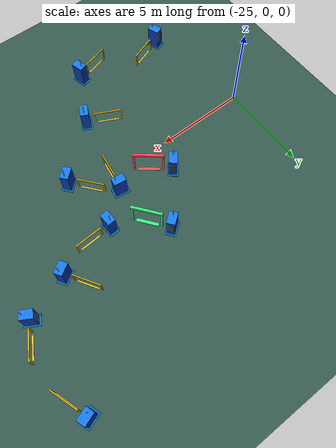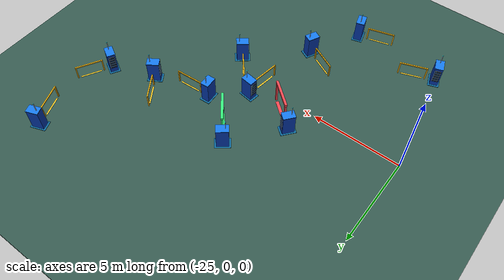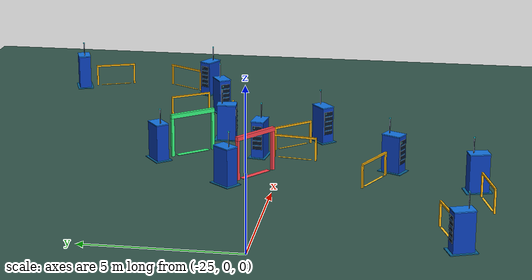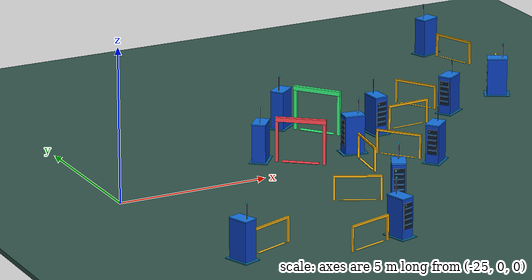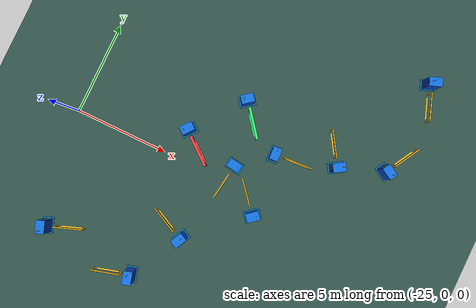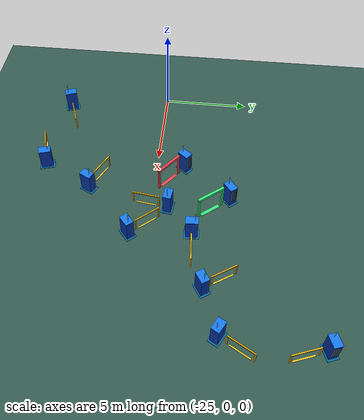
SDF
<sdf version="1.9">
 <world name="monaco">
  <model name="ground">
   <static>true</static>
   <link name="body">
    <visual name="ground">
     <pose>0 0 -0.08 0 0 0</pose>
     <geometry><box><size>100 100 0.15</size></box></geometry>
     <material><ambient>0.20 0.34 0.30 1</ambient><diffuse>0.20 0.34 0.30 1</diffuse></material>
    </visual>
    <collision name="ground_collision">
     <pose>0 0 -0.08 0 0 0</pose>
     <geometry><box><size>100 100 0.15</size></box></geometry>
    </collision>
   </link>
  </model>
  <model name="checkpoint_01">
   <static>true</static>
   <pose>-8.518051566739086 7.970329008862338 0 0 0 0.3514447940035536</pose>
   <link name="body">
    <visual name="stripe">
     <pose>0 0 0.016 0 0 0</pose>
     <geometry><box><size>0.08 1.17 0.008</size></box></geometry>
     <material><ambient>1 0.78 0.15 1</ambient><diffuse>1 0.78 0.15 1</diffuse></material>
    </visual>
    <visual name="post_-1">
     <pose>0 -0.73 0.38 0 0 0</pose>
     <geometry><box><size>0.06 0.06 0.76</size></box></geometry>
     <material><ambient>1 0.72 0.06 1</ambient><diffuse>1 0.72 0.06 1</diffuse></material>
    </visual>
    <visual name="post_1">
     <pose>0 0.73 0.38 0 0 0</pose>
     <geometry><box><size>0.06 0.06 0.76</size></box></geometry>
     <material><ambient>1 0.72 0.06 1</ambient><diffuse>1 0.72 0.06 1</diffuse></material>
    </visual>
    <visual name="overhead">
     <pose>0 0 0.79 0 0 0</pose>
     <geometry><box><size>0.06 1.52 0.06</size></box></geometry>
     <material><ambient>1 0.72 0.06 1</ambient><diffuse>1 0.72 0.06 1</diffuse></material>
    </visual>
   </link>
  </model>
  <model name="checkpoint_12">
   <static>true</static>
   <pose>-8.51454364613579 5.078725168060238 0 0 0 2.6257617773482065</pose>
   <link name="body">
    <visual name="stripe">
     <pose>0 0 0.016 0 0 0</pose>
     <geometry><box><size>0.08 1.17 0.008</size></box></geometry>
     <material><ambient>1 0.78 0.15 1</ambient><diffuse>1 0.78 0.15 1</diffuse></material>
    </visual>
    <visual name="post_-1">
     <pose>0 -0.73 0.38 0 0 0</pose>
     <geometry><box><size>0.06 0.06 0.76</size></box></geometry>
     <material><ambient>1 0.72 0.06 1</ambient><diffuse>1 0.72 0.06 1</diffuse></material>
    </visual>
    <visual name="post_1">
     <pose>0 0.73 0.38 0 0 0</pose>
     <geometry><box><size>0.06 0.06 0.76</size></box></geometry>
     <material><ambient>1 0.72 0.06 1</ambient><diffuse>1 0.72 0.06 1</diffuse></material>
    </visual>
    <visual name="overhead">
     <pose>0 0 0.79 0 0 0</pose>
     <geometry><box><size>0.06 1.52 0.06</size></box></geometry>
     <material><ambient>1 0.72 0.06 1</ambient><diffuse>1 0.72 0.06 1</diffuse></material>
    </visual>
   </link>
  </model>
  <model name="checkpoint_13">
   <static>true</static>
   <pose>-12.197067639076046 4.162002339004416 0 0 0 -2.5752049661076515</pose>
   <link name="body">
    <visual name="stripe">
     <pose>0 0 0.016 0 0 0</pose>
     <geometry><box><size>0.08 1.17 0.008</size></box></geometry>
     <material><ambient>1 0.78 0.15 1</ambient><diffuse>1 0.78 0.15 1</diffuse></material>
    </visual>
    <visual name="post_-1">
     <pose>0 -0.73 0.38 0 0 0</pose>
     <geometry><box><size>0.06 0.06 0.76</size></box></geometry>
     <material><ambient>1 0.72 0.06 1</ambient><diffuse>1 0.72 0.06 1</diffuse></material>
    </visual>
    <visual name="post_1">
     <pose>0 0.73 0.38 0 0 0</pose>
     <geometry><box><size>0.06 0.06 0.76</size></box></geometry>
     <material><ambient>1 0.72 0.06 1</ambient><diffuse>1 0.72 0.06 1</diffuse></material>
    </visual>
    <visual name="overhead">
     <pose>0 0 0.79 0 0 0</pose>
     <geometry><box><size>0.06 1.52 0.06</size></box></geometry>
     <material><ambient>1 0.72 0.06 1</ambient><diffuse>1 0.72 0.06 1</diffuse></material>
    </visual>
   </link>
  </model>
  <model name="checkpoint_14">
   <static>true</static>
   <pose>-13.475272569901112 2.419633688318865 0 0 0 -1.512040504079227</pose>
   <link name="body">
    <visual name="stripe">
     <pose>0 0 0.016 0 0 0</pose>
     <geometry><box><size>0.08 1.17 0.008</size></box></geometry>
     <material><ambient>1 0.78 0.15 1</ambient><diffuse>1 0.78 0.15 1</diffuse></material>
    </visual>
    <visual name="post_-1">
     <pose>0 -0.73 0.38 0 0 0</pose>
     <geometry><box><size>0.06 0.06 0.76</size></box></geometry>
     <material><ambient>1 0.72 0.06 1</ambient><diffuse>1 0.72 0.06 1</diffuse></material>
    </visual>
    <visual name="post_1">
     <pose>0 0.73 0.38 0 0 0</pose>
     <geometry><box><size>0.06 0.06 0.76</size></box></geometry>
     <material><ambient>1 0.72 0.06 1</ambient><diffuse>1 0.72 0.06 1</diffuse></material>
    </visual>
    <visual name="overhead">
     <pose>0 0 0.79 0 0 0</pose>
     <geometry><box><size>0.06 1.52 0.06</size></box></geometry>
     <material><ambient>1 0.72 0.06 1</ambient><diffuse>1 0.72 0.06 1</diffuse></material>
    </visual>
   </link>
  </model>
  <model name="checkpoint_15">
   <static>true</static>
   <pose>-15.224167509325685 -0.07355108800284103 0 0 0 -2.4410563523239475</pose>
   <link name="body">
    <visual name="stripe">
     <pose>0 0 0.016 0 0 0</pose>
     <geometry><box><size>0.08 1.17 0.008</size></box></geometry>
     <material><ambient>1 0.78 0.15 1</ambient><diffuse>1 0.78 0.15 1</diffuse></material>
    </visual>
    <visual name="post_-1">
     <pose>0 -0.73 0.38 0 0 0</pose>
     <geometry><box><size>0.06 0.06 0.76</size></box></geometry>
     <material><ambient>1 0.72 0.06 1</ambient><diffuse>1 0.72 0.06 1</diffuse></material>
    </visual>
    <visual name="post_1">
     <pose>0 0.73 0.38 0 0 0</pose>
     <geometry><box><size>0.06 0.06 0.76</size></box></geometry>
     <material><ambient>1 0.72 0.06 1</ambient><diffuse>1 0.72 0.06 1</diffuse></material>
    </visual>
    <visual name="overhead">
     <pose>0 0 0.79 0 0 0</pose>
     <geometry><box><size>0.06 1.52 0.06</size></box></geometry>
     <material><ambient>1 0.72 0.06 1</ambient><diffuse>1 0.72 0.06 1</diffuse></material>
    </visual>
   </link>
  </model>
  <model name="checkpoint_16">
   <static>true</static>
   <pose>-16.531889019514423 -0.31589909540593986 0 0 0 3.001413810353181</pose>
   <link name="body">
    <visual name="stripe">
     <pose>0 0 0.016 0 0 0</pose>
     <geometry><box><size>0.08 1.17 0.008</size></box></geometry>
     <material><ambient>1 0.78 0.15 1</ambient><diffuse>1 0.78 0.15 1</diffuse></material>
    </visual>
    <visual name="post_-1">
     <pose>0 -0.73 0.38 0 0 0</pose>
     <geometry><box><size>0.06 0.06 0.76</size></box></geometry>
     <material><ambient>1 0.72 0.06 1</ambient><diffuse>1 0.72 0.06 1</diffuse></material>
    </visual>
    <visual name="post_1">
     <pose>0 0.73 0.38 0 0 0</pose>
     <geometry><box><size>0.06 0.06 0.76</size></box></geometry>
     <material><ambient>1 0.72 0.06 1</ambient><diffuse>1 0.72 0.06 1</diffuse></material>
    </visual>
    <visual name="overhead">
     <pose>0 0 0.79 0 0 0</pose>
     <geometry><box><size>0.06 1.52 0.06</size></box></geometry>
     <material><ambient>1 0.72 0.06 1</ambient><diffuse>1 0.72 0.06 1</diffuse></material>
    </visual>
   </link>
  </model>
  <model name="checkpoint_17">
   <static>true</static>
   <pose>-18.396703856530358 -3.143370510452181 0 0 0 -2.0308338431756914</pose>
   <link name="body">
    <visual name="stripe">
     <pose>0 0 0.016 0 0 0</pose>
     <geometry><box><size>0.08 1.17 0.008</size></box></geometry>
     <material><ambient>1 0.78 0.15 1</ambient><diffuse>1 0.78 0.15 1</diffuse></material>
    </visual>
    <visual name="post_-1">
     <pose>0 -0.73 0.38 0 0 0</pose>
     <geometry><box><size>0.06 0.06 0.76</size></box></geometry>
     <material><ambient>1 0.72 0.06 1</ambient><diffuse>1 0.72 0.06 1</diffuse></material>
    </visual>
    <visual name="post_1">
     <pose>0 0.73 0.38 0 0 0</pose>
     <geometry><box><size>0.06 0.06 0.76</size></box></geometry>
     <material><ambient>1 0.72 0.06 1</ambient><diffuse>1 0.72 0.06 1</diffuse></material>
    </visual>
    <visual name="overhead">
     <pose>0 0 0.79 0 0 0</pose>
     <geometry><box><size>0.06 1.52 0.06</size></box></geometry>
     <material><ambient>1 0.72 0.06 1</ambient><diffuse>1 0.72 0.06 1</diffuse></material>
    </visual>
   </link>
  </model>
  <model name="checkpoint_18">
   <static>true</static>
   <pose>-19.991098207878863 -6.813204397872482 0 0 0 -1.2976837276046616</pose>
   <link name="body">
    <visual name="stripe">
     <pose>0 0 0.016 0 0 0</pose>
     <geometry><box><size>0.08 1.17 0.008</size></box></geometry>
     <material><ambient>1 0.78 0.15 1</ambient><diffuse>1 0.78 0.15 1</diffuse></material>
    </visual>
    <visual name="post_-1">
     <pose>0 -0.73 0.38 0 0 0</pose>
     <geometry><box><size>0.06 0.06 0.76</size></box></geometry>
     <material><ambient>1 0.72 0.06 1</ambient><diffuse>1 0.72 0.06 1</diffuse></material>
    </visual>
    <visual name="post_1">
     <pose>0 0.73 0.38 0 0 0</pose>
     <geometry><box><size>0.06 0.06 0.76</size></box></geometry>
     <material><ambient>1 0.72 0.06 1</ambient><diffuse>1 0.72 0.06 1</diffuse></material>
    </visual>
    <visual name="overhead">
     <pose>0 0 0.79 0 0 0</pose>
     <geometry><box><size>0.06 1.52 0.06</size></box></geometry>
     <material><ambient>1 0.72 0.06 1</ambient><diffuse>1 0.72 0.06 1</diffuse></material>
    </visual>
   </link>
  </model>
  <model name="checkpoint_19">
   <static>true</static>
   <pose>-22.6726604712124 -5.637929358284618 0 0 0 1.9169985286896902</pose>
   <link name="body">
    <visual name="stripe">
     <pose>0 0 0.016 0 0 0</pose>
     <geometry><box><size>0.08 1.17 0.008</size></box></geometry>
     <material><ambient>1 0.78 0.15 1</ambient><diffuse>1 0.78 0.15 1</diffuse></material>
    </visual>
    <visual name="post_-1">
     <pose>0 -0.73 0.38 0 0 0</pose>
     <geometry><box><size>0.06 0.06 0.76</size></box></geometry>
     <material><ambient>1 0.72 0.06 1</ambient><diffuse>1 0.72 0.06 1</diffuse></material>
    </visual>
    <visual name="post_1">
     <pose>0 0.73 0.38 0 0 0</pose>
     <geometry><box><size>0.06 0.06 0.76</size></box></geometry>
     <material><ambient>1 0.72 0.06 1</ambient><diffuse>1 0.72 0.06 1</diffuse></material>
    </visual>
    <visual name="overhead">
     <pose>0 0 0.79 0 0 0</pose>
     <geometry><box><size>0.06 1.52 0.06</size></box></geometry>
     <material><ambient>1 0.72 0.06 1</ambient><diffuse>1 0.72 0.06 1</diffuse></material>
    </visual>
   </link>
  </model>
  <model name="start">
   <static>true</static>
   <pose>-16.410725416388626 3.250943611330176 0 0 0 0.667306134978364</pose>
   <link name="body">
    <visual name="stripe">
     <pose>0 0 0.018 0 0 0</pose>
     <geometry><box><size>0.18 1.2 0.012</size></box></geometry>
     <material><ambient>0.2 0.95 0.48 1</ambient><diffuse>0.2 0.95 0.48 1</diffuse></material>
    </visual>
    <visual name="post_-1">
     <pose>0 -0.77 0.7 0 0 0</pose>
     <geometry><box><size>0.1 0.1 1.4</size></box></geometry>
     <material><ambient>0.2 0.95 0.48 1</ambient><diffuse>0.2 0.95 0.48 1</diffuse></material>
    </visual>
    <visual name="post_1">
     <pose>0 0.77 0.7 0 0 0</pose>
     <geometry><box><size>0.1 0.1 1.4</size></box></geometry>
     <material><ambient>0.2 0.95 0.48 1</ambient><diffuse>0.2 0.95 0.48 1</diffuse></material>
    </visual>
    <visual name="header">
     <pose>0 0 1.42 0 0 0</pose>
     <geometry><box><size>0.13 1.65 0.14</size></box></geometry>
     <material><ambient>0.2 0.95 0.48 1</ambient><diffuse>0.2 0.95 0.48 1</diffuse></material>
    </visual>
   </link>
  </model>
  <model name="finish">
   <static>true</static>
   <pose>-18.32026696856702 0.7777647055836955 0 0 0 0.8913825213871167</pose>
   <link name="body">
    <visual name="stripe">
     <pose>0 0 0.018 0 0 0</pose>
     <geometry><box><size>0.18 1.2 0.012</size></box></geometry>
     <material><ambient>1 0.27 0.31 1</ambient><diffuse>1 0.27 0.31 1</diffuse></material>
    </visual>
    <visual name="post_-1">
     <pose>0 -0.77 0.7 0 0 0</pose>
     <geometry><box><size>0.1 0.1 1.4</size></box></geometry>
     <material><ambient>1 0.27 0.31 1</ambient><diffuse>1 0.27 0.31 1</diffuse></material>
    </visual>
    <visual name="post_1">
     <pose>0 0.77 0.7 0 0 0</pose>
     <geometry><box><size>0.1 0.1 1.4</size></box></geometry>
     <material><ambient>1 0.27 0.31 1</ambient><diffuse>1 0.27 0.31 1</diffuse></material>
    </visual>
    <visual name="header">
     <pose>0 0 1.42 0 0 0</pose>
     <geometry><box><size>0.13 1.65 0.14</size></box></geometry>
     <material><ambient>1 0.27 0.31 1</ambient><diffuse>1 0.27 0.31 1</diffuse></material>
    </visual>
   </link>
  </model>
  <model name="edge_01">
   <static>true</static>
   <pose>-8.948369878187117 9.143924403720598 0 0 0 0.3514447940035536</pose>
   <link name="body">
    <collision name="chassis_collision">
     <pose>0 0 0.14 0 0 0</pose>
     <geometry><box><size>0.64 0.32 0.13</size></box></geometry>
    </collision>
    <visual name="parking_bay">
     <pose>0 0 0.012 0 0 0</pose>
     <geometry><box><size>0.86 0.60 0.025</size></box></geometry>
     <material><ambient>0.04 0.40 0.60 1</ambient><diffuse>0.04 0.40 0.60 1</diffuse></material>
    </visual>
    <visual name="server_cabinet">
     <pose>0 0 0.65 0 0 0</pose>
     <geometry><box><size>0.66 0.44 1.25</size></box></geometry>
     <material><ambient>0.035 0.24 0.72 1</ambient><diffuse>0.035 0.24 0.72 1</diffuse></material>
    </visual>
    <visual name="cabinet_top">
     <pose>0 0 1.285 0 0 0</pose>
     <geometry><box><size>0.68 0.46 0.035</size></box></geometry>
     <material><ambient>0.08 0.46 0.90 1</ambient><diffuse>0.08 0.46 0.90 1</diffuse></material>
    </visual>
    <visual name="front_panel">
     <pose>0.337 0 0.73 0 0 0</pose>
     <geometry><box><size>0.014 0.34 0.82</size></box></geometry>
     <material><ambient>0.025 0.075 0.14 1</ambient><diffuse>0.025 0.075 0.14 1</diffuse></material>
    </visual>
    <visual name="rack_slot_0">
     <pose>0.347 0 0.47 0 0 0</pose>
     <geometry><box><size>0.012 0.29 0.045</size></box></geometry>
     <material><ambient>0.11 0.38 0.62 1</ambient><diffuse>0.11 0.38 0.62 1</diffuse></material>
    </visual>
    <visual name="rack_slot_1">
     <pose>0.347 0 0.64 0 0 0</pose>
     <geometry><box><size>0.012 0.29 0.045</size></box></geometry>
     <material><ambient>0.11 0.38 0.62 1</ambient><diffuse>0.11 0.38 0.62 1</diffuse></material>
    </visual>
    <visual name="rack_slot_2">
     <pose>0.347 0 0.81 0 0 0</pose>
     <geometry><box><size>0.012 0.29 0.045</size></box></geometry>
     <material><ambient>0.11 0.38 0.62 1</ambient><diffuse>0.11 0.38 0.62 1</diffuse></material>
    </visual>
    <visual name="rack_slot_3">
     <pose>0.347 0 0.98 0 0 0</pose>
     <geometry><box><size>0.012 0.29 0.045</size></box></geometry>
     <material><ambient>0.11 0.38 0.62 1</ambient><diffuse>0.11 0.38 0.62 1</diffuse></material>
    </visual>
    <visual name="status_light">
     <pose>0.347 -0.10 1.08 0 0 0</pose>
     <geometry><box><size>0.015 0.035 0.035</size></box></geometry>
     <material><ambient>0.10 0.95 0.80 1</ambient><diffuse>0.10 0.95 0.80 1</diffuse></material>
    </visual>
    <visual name="antenna">
     <pose>-0.17 0 1.55 0 0 0</pose>
     <geometry><cylinder><radius>0.018</radius><length>0.5</length></cylinder></geometry>
     <material><ambient>0.05 0.10 0.17 1</ambient><diffuse>0.05 0.10 0.17 1</diffuse></material>
    </visual>
    <visual name="antenna_tip">
     <pose>-0.17 0 1.81 0 0 0</pose>
     <geometry><cylinder><radius>0.027</radius><length>0.035</length></cylinder></geometry>
     <material><ambient>0.12 0.90 0.96 1</ambient><diffuse>0.12 0.90 0.96 1</diffuse></material>
    </visual>
   </link>
  </model>
  <model name="edge_12">
   <static>true</static>
   <pose>-9.131115876744632 3.9913711850160603 0 0 0 2.6257617773482065</pose>
   <link name="body">
    <collision name="chassis_collision">
     <pose>0 0 0.14 0 0 0</pose>
     <geometry><box><size>0.64 0.32 0.13</size></box></geometry>
    </collision>
    <visual name="parking_bay">
     <pose>0 0 0.012 0 0 0</pose>
     <geometry><box><size>0.86 0.60 0.025</size></box></geometry>
     <material><ambient>0.04 0.40 0.60 1</ambient><diffuse>0.04 0.40 0.60 1</diffuse></material>
    </visual>
    <visual name="server_cabinet">
     <pose>0 0 0.65 0 0 0</pose>
     <geometry><box><size>0.66 0.44 1.25</size></box></geometry>
     <material><ambient>0.035 0.24 0.72 1</ambient><diffuse>0.035 0.24 0.72 1</diffuse></material>
    </visual>
    <visual name="cabinet_top">
     <pose>0 0 1.285 0 0 0</pose>
     <geometry><box><size>0.68 0.46 0.035</size></box></geometry>
     <material><ambient>0.08 0.46 0.90 1</ambient><diffuse>0.08 0.46 0.90 1</diffuse></material>
    </visual>
    <visual name="front_panel">
     <pose>0.337 0 0.73 0 0 0</pose>
     <geometry><box><size>0.014 0.34 0.82</size></box></geometry>
     <material><ambient>0.025 0.075 0.14 1</ambient><diffuse>0.025 0.075 0.14 1</diffuse></material>
    </visual>
    <visual name="rack_slot_0">
     <pose>0.347 0 0.47 0 0 0</pose>
     <geometry><box><size>0.012 0.29 0.045</size></box></geometry>
     <material><ambient>0.11 0.38 0.62 1</ambient><diffuse>0.11 0.38 0.62 1</diffuse></material>
    </visual>
    <visual name="rack_slot_1">
     <pose>0.347 0 0.64 0 0 0</pose>
     <geometry><box><size>0.012 0.29 0.045</size></box></geometry>
     <material><ambient>0.11 0.38 0.62 1</ambient><diffuse>0.11 0.38 0.62 1</diffuse></material>
    </visual>
    <visual name="rack_slot_2">
     <pose>0.347 0 0.81 0 0 0</pose>
     <geometry><box><size>0.012 0.29 0.045</size></box></geometry>
     <material><ambient>0.11 0.38 0.62 1</ambient><diffuse>0.11 0.38 0.62 1</diffuse></material>
    </visual>
    <visual name="rack_slot_3">
     <pose>0.347 0 0.98 0 0 0</pose>
     <geometry><box><size>0.012 0.29 0.045</size></box></geometry>
     <material><ambient>0.11 0.38 0.62 1</ambient><diffuse>0.11 0.38 0.62 1</diffuse></material>
    </visual>
    <visual name="status_light">
     <pose>0.347 -0.10 1.08 0 0 0</pose>
     <geometry><box><size>0.015 0.035 0.035</size></box></geometry>
     <material><ambient>0.10 0.95 0.80 1</ambient><diffuse>0.10 0.95 0.80 1</diffuse></material>
    </visual>
    <visual name="antenna">
     <pose>-0.17 0 1.55 0 0 0</pose>
     <geometry><cylinder><radius>0.018</radius><length>0.5</length></cylinder></geometry>
     <material><ambient>0.05 0.10 0.17 1</ambient><diffuse>0.05 0.10 0.17 1</diffuse></material>
    </visual>
    <visual name="antenna_tip">
     <pose>-0.17 0 1.81 0 0 0</pose>
     <geometry><cylinder><radius>0.027</radius><length>0.035</length></cylinder></geometry>
     <material><ambient>0.12 0.90 0.96 1</ambient><diffuse>0.12 0.90 0.96 1</diffuse></material>
    </visual>
   </link>
  </model>
  <model name="edge_13">
   <static>true</static>
   <pose>-11.526333482645251 3.1071963419617985 0 0 0 -2.5752049661076515</pose>
   <link name="body">
    <collision name="chassis_collision">
     <pose>0 0 0.14 0 0 0</pose>
     <geometry><box><size>0.64 0.32 0.13</size></box></geometry>
    </collision>
    <visual name="parking_bay">
     <pose>0 0 0.012 0 0 0</pose>
     <geometry><box><size>0.86 0.60 0.025</size></box></geometry>
     <material><ambient>0.04 0.40 0.60 1</ambient><diffuse>0.04 0.40 0.60 1</diffuse></material>
    </visual>
    <visual name="server_cabinet">
     <pose>0 0 0.65 0 0 0</pose>
     <geometry><box><size>0.66 0.44 1.25</size></box></geometry>
     <material><ambient>0.035 0.24 0.72 1</ambient><diffuse>0.035 0.24 0.72 1</diffuse></material>
    </visual>
    <visual name="cabinet_top">
     <pose>0 0 1.285 0 0 0</pose>
     <geometry><box><size>0.68 0.46 0.035</size></box></geometry>
     <material><ambient>0.08 0.46 0.90 1</ambient><diffuse>0.08 0.46 0.90 1</diffuse></material>
    </visual>
    <visual name="front_panel">
     <pose>0.337 0 0.73 0 0 0</pose>
     <geometry><box><size>0.014 0.34 0.82</size></box></geometry>
     <material><ambient>0.025 0.075 0.14 1</ambient><diffuse>0.025 0.075 0.14 1</diffuse></material>
    </visual>
    <visual name="rack_slot_0">
     <pose>0.347 0 0.47 0 0 0</pose>
     <geometry><box><size>0.012 0.29 0.045</size></box></geometry>
     <material><ambient>0.11 0.38 0.62 1</ambient><diffuse>0.11 0.38 0.62 1</diffuse></material>
    </visual>
    <visual name="rack_slot_1">
     <pose>0.347 0 0.64 0 0 0</pose>
     <geometry><box><size>0.012 0.29 0.045</size></box></geometry>
     <material><ambient>0.11 0.38 0.62 1</ambient><diffuse>0.11 0.38 0.62 1</diffuse></material>
    </visual>
    <visual name="rack_slot_2">
     <pose>0.347 0 0.81 0 0 0</pose>
     <geometry><box><size>0.012 0.29 0.045</size></box></geometry>
     <material><ambient>0.11 0.38 0.62 1</ambient><diffuse>0.11 0.38 0.62 1</diffuse></material>
    </visual>
    <visual name="rack_slot_3">
     <pose>0.347 0 0.98 0 0 0</pose>
     <geometry><box><size>0.012 0.29 0.045</size></box></geometry>
     <material><ambient>0.11 0.38 0.62 1</ambient><diffuse>0.11 0.38 0.62 1</diffuse></material>
    </visual>
    <visual name="status_light">
     <pose>0.347 -0.10 1.08 0 0 0</pose>
     <geometry><box><size>0.015 0.035 0.035</size></box></geometry>
     <material><ambient>0.10 0.95 0.80 1</ambient><diffuse>0.10 0.95 0.80 1</diffuse></material>
    </visual>
    <visual name="antenna">
     <pose>-0.17 0 1.55 0 0 0</pose>
     <geometry><cylinder><radius>0.018</radius><length>0.5</length></cylinder></geometry>
     <material><ambient>0.05 0.10 0.17 1</ambient><diffuse>0.05 0.10 0.17 1</diffuse></material>
    </visual>
    <visual name="antenna_tip">
     <pose>-0.17 0 1.81 0 0 0</pose>
     <geometry><cylinder><radius>0.027</radius><length>0.035</length></cylinder></geometry>
     <material><ambient>0.12 0.90 0.96 1</ambient><diffuse>0.12 0.90 0.96 1</diffuse></material>
    </visual>
   </link>
  </model>
  <model name="edge_14">
   <static>true</static>
   <pose>-14.72311553636986 2.3462311608795936 0 0 0 -1.512040504079227</pose>
   <link name="body">
    <collision name="chassis_collision">
     <pose>0 0 0.14 0 0 0</pose>
     <geometry><box><size>0.64 0.32 0.13</size></box></geometry>
    </collision>
    <visual name="parking_bay">
     <pose>0 0 0.012 0 0 0</pose>
     <geometry><box><size>0.86 0.60 0.025</size></box></geometry>
     <material><ambient>0.04 0.40 0.60 1</ambient><diffuse>0.04 0.40 0.60 1</diffuse></material>
    </visual>
    <visual name="server_cabinet">
     <pose>0 0 0.65 0 0 0</pose>
     <geometry><box><size>0.66 0.44 1.25</size></box></geometry>
     <material><ambient>0.035 0.24 0.72 1</ambient><diffuse>0.035 0.24 0.72 1</diffuse></material>
    </visual>
    <visual name="cabinet_top">
     <pose>0 0 1.285 0 0 0</pose>
     <geometry><box><size>0.68 0.46 0.035</size></box></geometry>
     <material><ambient>0.08 0.46 0.90 1</ambient><diffuse>0.08 0.46 0.90 1</diffuse></material>
    </visual>
    <visual name="front_panel">
     <pose>0.337 0 0.73 0 0 0</pose>
     <geometry><box><size>0.014 0.34 0.82</size></box></geometry>
     <material><ambient>0.025 0.075 0.14 1</ambient><diffuse>0.025 0.075 0.14 1</diffuse></material>
    </visual>
    <visual name="rack_slot_0">
     <pose>0.347 0 0.47 0 0 0</pose>
     <geometry><box><size>0.012 0.29 0.045</size></box></geometry>
     <material><ambient>0.11 0.38 0.62 1</ambient><diffuse>0.11 0.38 0.62 1</diffuse></material>
    </visual>
    <visual name="rack_slot_1">
     <pose>0.347 0 0.64 0 0 0</pose>
     <geometry><box><size>0.012 0.29 0.045</size></box></geometry>
     <material><ambient>0.11 0.38 0.62 1</ambient><diffuse>0.11 0.38 0.62 1</diffuse></material>
    </visual>
    <visual name="rack_slot_2">
     <pose>0.347 0 0.81 0 0 0</pose>
     <geometry><box><size>0.012 0.29 0.045</size></box></geometry>
     <material><ambient>0.11 0.38 0.62 1</ambient><diffuse>0.11 0.38 0.62 1</diffuse></material>
    </visual>
    <visual name="rack_slot_3">
     <pose>0.347 0 0.98 0 0 0</pose>
     <geometry><box><size>0.012 0.29 0.045</size></box></geometry>
     <material><ambient>0.11 0.38 0.62 1</ambient><diffuse>0.11 0.38 0.62 1</diffuse></material>
    </visual>
    <visual name="status_light">
     <pose>0.347 -0.10 1.08 0 0 0</pose>
     <geometry><box><size>0.015 0.035 0.035</size></box></geometry>
     <material><ambient>0.10 0.95 0.80 1</ambient><diffuse>0.10 0.95 0.80 1</diffuse></material>
    </visual>
    <visual name="antenna">
     <pose>-0.17 0 1.55 0 0 0</pose>
     <geometry><cylinder><radius>0.018</radius><length>0.5</length></cylinder></geometry>
     <material><ambient>0.05 0.10 0.17 1</ambient><diffuse>0.05 0.10 0.17 1</diffuse></material>
    </visual>
    <visual name="antenna_tip">
     <pose>-0.17 0 1.81 0 0 0</pose>
     <geometry><cylinder><radius>0.027</radius><length>0.035</length></cylinder></geometry>
     <material><ambient>0.12 0.90 0.96 1</ambient><diffuse>0.12 0.90 0.96 1</diffuse></material>
    </visual>
   </link>
  </model>
  <model name="edge_15">
   <static>true</static>
   <pose>-14.41838278381743 -1.0291718161882364 0 0 0 -2.4410563523239475</pose>
   <link name="body">
    <collision name="chassis_collision">
     <pose>0 0 0.14 0 0 0</pose>
     <geometry><box><size>0.64 0.32 0.13</size></box></geometry>
    </collision>
    <visual name="parking_bay">
     <pose>0 0 0.012 0 0 0</pose>
     <geometry><box><size>0.86 0.60 0.025</size></box></geometry>
     <material><ambient>0.04 0.40 0.60 1</ambient><diffuse>0.04 0.40 0.60 1</diffuse></material>
    </visual>
    <visual name="server_cabinet">
     <pose>0 0 0.65 0 0 0</pose>
     <geometry><box><size>0.66 0.44 1.25</size></box></geometry>
     <material><ambient>0.035 0.24 0.72 1</ambient><diffuse>0.035 0.24 0.72 1</diffuse></material>
    </visual>
    <visual name="cabinet_top">
     <pose>0 0 1.285 0 0 0</pose>
     <geometry><box><size>0.68 0.46 0.035</size></box></geometry>
     <material><ambient>0.08 0.46 0.90 1</ambient><diffuse>0.08 0.46 0.90 1</diffuse></material>
    </visual>
    <visual name="front_panel">
     <pose>0.337 0 0.73 0 0 0</pose>
     <geometry><box><size>0.014 0.34 0.82</size></box></geometry>
     <material><ambient>0.025 0.075 0.14 1</ambient><diffuse>0.025 0.075 0.14 1</diffuse></material>
    </visual>
    <visual name="rack_slot_0">
     <pose>0.347 0 0.47 0 0 0</pose>
     <geometry><box><size>0.012 0.29 0.045</size></box></geometry>
     <material><ambient>0.11 0.38 0.62 1</ambient><diffuse>0.11 0.38 0.62 1</diffuse></material>
    </visual>
    <visual name="rack_slot_1">
     <pose>0.347 0 0.64 0 0 0</pose>
     <geometry><box><size>0.012 0.29 0.045</size></box></geometry>
     <material><ambient>0.11 0.38 0.62 1</ambient><diffuse>0.11 0.38 0.62 1</diffuse></material>
    </visual>
    <visual name="rack_slot_2">
     <pose>0.347 0 0.81 0 0 0</pose>
     <geometry><box><size>0.012 0.29 0.045</size></box></geometry>
     <material><ambient>0.11 0.38 0.62 1</ambient><diffuse>0.11 0.38 0.62 1</diffuse></material>
    </visual>
    <visual name="rack_slot_3">
     <pose>0.347 0 0.98 0 0 0</pose>
     <geometry><box><size>0.012 0.29 0.045</size></box></geometry>
     <material><ambient>0.11 0.38 0.62 1</ambient><diffuse>0.11 0.38 0.62 1</diffuse></material>
    </visual>
    <visual name="status_light">
     <pose>0.347 -0.10 1.08 0 0 0</pose>
     <geometry><box><size>0.015 0.035 0.035</size></box></geometry>
     <material><ambient>0.10 0.95 0.80 1</ambient><diffuse>0.10 0.95 0.80 1</diffuse></material>
    </visual>
    <visual name="antenna">
     <pose>-0.17 0 1.55 0 0 0</pose>
     <geometry><cylinder><radius>0.018</radius><length>0.5</length></cylinder></geometry>
     <material><ambient>0.05 0.10 0.17 1</ambient><diffuse>0.05 0.10 0.17 1</diffuse></material>
    </visual>
    <visual name="antenna_tip">
     <pose>-0.17 0 1.81 0 0 0</pose>
     <geometry><cylinder><radius>0.027</radius><length>0.035</length></cylinder></geometry>
     <material><ambient>0.12 0.90 0.96 1</ambient><diffuse>0.12 0.90 0.96 1</diffuse></material>
    </visual>
   </link>
  </model>
  <model name="edge_16">
   <static>true</static>
   <pose>-16.357238762207718 0.9218396846372087 0 0 0 3.001413810353181</pose>
   <link name="body">
    <collision name="chassis_collision">
     <pose>0 0 0.14 0 0 0</pose>
     <geometry><box><size>0.64 0.32 0.13</size></box></geometry>
    </collision>
    <visual name="parking_bay">
     <pose>0 0 0.012 0 0 0</pose>
     <geometry><box><size>0.86 0.60 0.025</size></box></geometry>
     <material><ambient>0.04 0.40 0.60 1</ambient><diffuse>0.04 0.40 0.60 1</diffuse></material>
    </visual>
    <visual name="server_cabinet">
     <pose>0 0 0.65 0 0 0</pose>
     <geometry><box><size>0.66 0.44 1.25</size></box></geometry>
     <material><ambient>0.035 0.24 0.72 1</ambient><diffuse>0.035 0.24 0.72 1</diffuse></material>
    </visual>
    <visual name="cabinet_top">
     <pose>0 0 1.285 0 0 0</pose>
     <geometry><box><size>0.68 0.46 0.035</size></box></geometry>
     <material><ambient>0.08 0.46 0.90 1</ambient><diffuse>0.08 0.46 0.90 1</diffuse></material>
    </visual>
    <visual name="front_panel">
     <pose>0.337 0 0.73 0 0 0</pose>
     <geometry><box><size>0.014 0.34 0.82</size></box></geometry>
     <material><ambient>0.025 0.075 0.14 1</ambient><diffuse>0.025 0.075 0.14 1</diffuse></material>
    </visual>
    <visual name="rack_slot_0">
     <pose>0.347 0 0.47 0 0 0</pose>
     <geometry><box><size>0.012 0.29 0.045</size></box></geometry>
     <material><ambient>0.11 0.38 0.62 1</ambient><diffuse>0.11 0.38 0.62 1</diffuse></material>
    </visual>
    <visual name="rack_slot_1">
     <pose>0.347 0 0.64 0 0 0</pose>
     <geometry><box><size>0.012 0.29 0.045</size></box></geometry>
     <material><ambient>0.11 0.38 0.62 1</ambient><diffuse>0.11 0.38 0.62 1</diffuse></material>
    </visual>
    <visual name="rack_slot_2">
     <pose>0.347 0 0.81 0 0 0</pose>
     <geometry><box><size>0.012 0.29 0.045</size></box></geometry>
     <material><ambient>0.11 0.38 0.62 1</ambient><diffuse>0.11 0.38 0.62 1</diffuse></material>
    </visual>
    <visual name="rack_slot_3">
     <pose>0.347 0 0.98 0 0 0</pose>
     <geometry><box><size>0.012 0.29 0.045</size></box></geometry>
     <material><ambient>0.11 0.38 0.62 1</ambient><diffuse>0.11 0.38 0.62 1</diffuse></material>
    </visual>
    <visual name="status_light">
     <pose>0.347 -0.10 1.08 0 0 0</pose>
     <geometry><box><size>0.015 0.035 0.035</size></box></geometry>
     <material><ambient>0.10 0.95 0.80 1</ambient><diffuse>0.10 0.95 0.80 1</diffuse></material>
    </visual>
    <visual name="antenna">
     <pose>-0.17 0 1.55 0 0 0</pose>
     <geometry><cylinder><radius>0.018</radius><length>0.5</length></cylinder></geometry>
     <material><ambient>0.05 0.10 0.17 1</ambient><diffuse>0.05 0.10 0.17 1</diffuse></material>
    </visual>
    <visual name="antenna_tip">
     <pose>-0.17 0 1.81 0 0 0</pose>
     <geometry><cylinder><radius>0.027</radius><length>0.035</length></cylinder></geometry>
     <material><ambient>0.12 0.90 0.96 1</ambient><diffuse>0.12 0.90 0.96 1</diffuse></material>
    </visual>
   </link>
  </model>
  <model name="edge_17">
   <static>true</static>
   <pose>-17.276659054569475 -3.6983476645769278 0 0 0 -2.0308338431756914</pose>
   <link name="body">
    <collision name="chassis_collision">
     <pose>0 0 0.14 0 0 0</pose>
     <geometry><box><size>0.64 0.32 0.13</size></box></geometry>
    </collision>
    <visual name="parking_bay">
     <pose>0 0 0.012 0 0 0</pose>
     <geometry><box><size>0.86 0.60 0.025</size></box></geometry>
     <material><ambient>0.04 0.40 0.60 1</ambient><diffuse>0.04 0.40 0.60 1</diffuse></material>
    </visual>
    <visual name="server_cabinet">
     <pose>0 0 0.65 0 0 0</pose>
     <geometry><box><size>0.66 0.44 1.25</size></box></geometry>
     <material><ambient>0.035 0.24 0.72 1</ambient><diffuse>0.035 0.24 0.72 1</diffuse></material>
    </visual>
    <visual name="cabinet_top">
     <pose>0 0 1.285 0 0 0</pose>
     <geometry><box><size>0.68 0.46 0.035</size></box></geometry>
     <material><ambient>0.08 0.46 0.90 1</ambient><diffuse>0.08 0.46 0.90 1</diffuse></material>
    </visual>
    <visual name="front_panel">
     <pose>0.337 0 0.73 0 0 0</pose>
     <geometry><box><size>0.014 0.34 0.82</size></box></geometry>
     <material><ambient>0.025 0.075 0.14 1</ambient><diffuse>0.025 0.075 0.14 1</diffuse></material>
    </visual>
    <visual name="rack_slot_0">
     <pose>0.347 0 0.47 0 0 0</pose>
     <geometry><box><size>0.012 0.29 0.045</size></box></geometry>
     <material><ambient>0.11 0.38 0.62 1</ambient><diffuse>0.11 0.38 0.62 1</diffuse></material>
    </visual>
    <visual name="rack_slot_1">
     <pose>0.347 0 0.64 0 0 0</pose>
     <geometry><box><size>0.012 0.29 0.045</size></box></geometry>
     <material><ambient>0.11 0.38 0.62 1</ambient><diffuse>0.11 0.38 0.62 1</diffuse></material>
    </visual>
    <visual name="rack_slot_2">
     <pose>0.347 0 0.81 0 0 0</pose>
     <geometry><box><size>0.012 0.29 0.045</size></box></geometry>
     <material><ambient>0.11 0.38 0.62 1</ambient><diffuse>0.11 0.38 0.62 1</diffuse></material>
    </visual>
    <visual name="rack_slot_3">
     <pose>0.347 0 0.98 0 0 0</pose>
     <geometry><box><size>0.012 0.29 0.045</size></box></geometry>
     <material><ambient>0.11 0.38 0.62 1</ambient><diffuse>0.11 0.38 0.62 1</diffuse></material>
    </visual>
    <visual name="status_light">
     <pose>0.347 -0.10 1.08 0 0 0</pose>
     <geometry><box><size>0.015 0.035 0.035</size></box></geometry>
     <material><ambient>0.10 0.95 0.80 1</ambient><diffuse>0.10 0.95 0.80 1</diffuse></material>
    </visual>
    <visual name="antenna">
     <pose>-0.17 0 1.55 0 0 0</pose>
     <geometry><cylinder><radius>0.018</radius><length>0.5</length></cylinder></geometry>
     <material><ambient>0.05 0.10 0.17 1</ambient><diffuse>0.05 0.10 0.17 1</diffuse></material>
    </visual>
    <visual name="antenna_tip">
     <pose>-0.17 0 1.81 0 0 0</pose>
     <geometry><cylinder><radius>0.027</radius><length>0.035</length></cylinder></geometry>
     <material><ambient>0.12 0.90 0.96 1</ambient><diffuse>0.12 0.90 0.96 1</diffuse></material>
    </visual>
   </link>
  </model>
  <model name="edge_18">
   <static>true</static>
   <pose>-18.78742820660603 -6.476041932529949 0 0 0 -1.2976837276046616</pose>
   <link name="body">
    <collision name="chassis_collision">
     <pose>0 0 0.14 0 0 0</pose>
     <geometry><box><size>0.64 0.32 0.13</size></box></geometry>
    </collision>
    <visual name="parking_bay">
     <pose>0 0 0.012 0 0 0</pose>
     <geometry><box><size>0.86 0.60 0.025</size></box></geometry>
     <material><ambient>0.04 0.40 0.60 1</ambient><diffuse>0.04 0.40 0.60 1</diffuse></material>
    </visual>
    <visual name="server_cabinet">
     <pose>0 0 0.65 0 0 0</pose>
     <geometry><box><size>0.66 0.44 1.25</size></box></geometry>
     <material><ambient>0.035 0.24 0.72 1</ambient><diffuse>0.035 0.24 0.72 1</diffuse></material>
    </visual>
    <visual name="cabinet_top">
     <pose>0 0 1.285 0 0 0</pose>
     <geometry><box><size>0.68 0.46 0.035</size></box></geometry>
     <material><ambient>0.08 0.46 0.90 1</ambient><diffuse>0.08 0.46 0.90 1</diffuse></material>
    </visual>
    <visual name="front_panel">
     <pose>0.337 0 0.73 0 0 0</pose>
     <geometry><box><size>0.014 0.34 0.82</size></box></geometry>
     <material><ambient>0.025 0.075 0.14 1</ambient><diffuse>0.025 0.075 0.14 1</diffuse></material>
    </visual>
    <visual name="rack_slot_0">
     <pose>0.347 0 0.47 0 0 0</pose>
     <geometry><box><size>0.012 0.29 0.045</size></box></geometry>
     <material><ambient>0.11 0.38 0.62 1</ambient><diffuse>0.11 0.38 0.62 1</diffuse></material>
    </visual>
    <visual name="rack_slot_1">
     <pose>0.347 0 0.64 0 0 0</pose>
     <geometry><box><size>0.012 0.29 0.045</size></box></geometry>
     <material><ambient>0.11 0.38 0.62 1</ambient><diffuse>0.11 0.38 0.62 1</diffuse></material>
    </visual>
    <visual name="rack_slot_2">
     <pose>0.347 0 0.81 0 0 0</pose>
     <geometry><box><size>0.012 0.29 0.045</size></box></geometry>
     <material><ambient>0.11 0.38 0.62 1</ambient><diffuse>0.11 0.38 0.62 1</diffuse></material>
    </visual>
    <visual name="rack_slot_3">
     <pose>0.347 0 0.98 0 0 0</pose>
     <geometry><box><size>0.012 0.29 0.045</size></box></geometry>
     <material><ambient>0.11 0.38 0.62 1</ambient><diffuse>0.11 0.38 0.62 1</diffuse></material>
    </visual>
    <visual name="status_light">
     <pose>0.347 -0.10 1.08 0 0 0</pose>
     <geometry><box><size>0.015 0.035 0.035</size></box></geometry>
     <material><ambient>0.10 0.95 0.80 1</ambient><diffuse>0.10 0.95 0.80 1</diffuse></material>
    </visual>
    <visual name="antenna">
     <pose>-0.17 0 1.55 0 0 0</pose>
     <geometry><cylinder><radius>0.018</radius><length>0.5</length></cylinder></geometry>
     <material><ambient>0.05 0.10 0.17 1</ambient><diffuse>0.05 0.10 0.17 1</diffuse></material>
    </visual>
    <visual name="antenna_tip">
     <pose>-0.17 0 1.81 0 0 0</pose>
     <geometry><cylinder><radius>0.027</radius><length>0.035</length></cylinder></geometry>
     <material><ambient>0.12 0.90 0.96 1</ambient><diffuse>0.12 0.90 0.96 1</diffuse></material>
    </visual>
   </link>
  </model>
  <model name="edge_19">
   <static>true</static>
   <pose>-23.848495711156332 -6.062089102374028 0 0 0 1.9169985286896902</pose>
   <link name="body">
    <collision name="chassis_collision">
     <pose>0 0 0.14 0 0 0</pose>
     <geometry><box><size>0.64 0.32 0.13</size></box></geometry>
    </collision>
    <visual name="parking_bay">
     <pose>0 0 0.012 0 0 0</pose>
     <geometry><box><size>0.86 0.60 0.025</size></box></geometry>
     <material><ambient>0.04 0.40 0.60 1</ambient><diffuse>0.04 0.40 0.60 1</diffuse></material>
    </visual>
    <visual name="server_cabinet">
     <pose>0 0 0.65 0 0 0</pose>
     <geometry><box><size>0.66 0.44 1.25</size></box></geometry>
     <material><ambient>0.035 0.24 0.72 1</ambient><diffuse>0.035 0.24 0.72 1</diffuse></material>
    </visual>
    <visual name="cabinet_top">
     <pose>0 0 1.285 0 0 0</pose>
     <geometry><box><size>0.68 0.46 0.035</size></box></geometry>
     <material><ambient>0.08 0.46 0.90 1</ambient><diffuse>0.08 0.46 0.90 1</diffuse></material>
    </visual>
    <visual name="front_panel">
     <pose>0.337 0 0.73 0 0 0</pose>
     <geometry><box><size>0.014 0.34 0.82</size></box></geometry>
     <material><ambient>0.025 0.075 0.14 1</ambient><diffuse>0.025 0.075 0.14 1</diffuse></material>
    </visual>
    <visual name="rack_slot_0">
     <pose>0.347 0 0.47 0 0 0</pose>
     <geometry><box><size>0.012 0.29 0.045</size></box></geometry>
     <material><ambient>0.11 0.38 0.62 1</ambient><diffuse>0.11 0.38 0.62 1</diffuse></material>
    </visual>
    <visual name="rack_slot_1">
     <pose>0.347 0 0.64 0 0 0</pose>
     <geometry><box><size>0.012 0.29 0.045</size></box></geometry>
     <material><ambient>0.11 0.38 0.62 1</ambient><diffuse>0.11 0.38 0.62 1</diffuse></material>
    </visual>
    <visual name="rack_slot_2">
     <pose>0.347 0 0.81 0 0 0</pose>
     <geometry><box><size>0.012 0.29 0.045</size></box></geometry>
     <material><ambient>0.11 0.38 0.62 1</ambient><diffuse>0.11 0.38 0.62 1</diffuse></material>
    </visual>
    <visual name="rack_slot_3">
     <pose>0.347 0 0.98 0 0 0</pose>
     <geometry><box><size>0.012 0.29 0.045</size></box></geometry>
     <material><ambient>0.11 0.38 0.62 1</ambient><diffuse>0.11 0.38 0.62 1</diffuse></material>
    </visual>
    <visual name="status_light">
     <pose>0.347 -0.10 1.08 0 0 0</pose>
     <geometry><box><size>0.015 0.035 0.035</size></box></geometry>
     <material><ambient>0.10 0.95 0.80 1</ambient><diffuse>0.10 0.95 0.80 1</diffuse></material>
    </visual>
    <visual name="antenna">
     <pose>-0.17 0 1.55 0 0 0</pose>
     <geometry><cylinder><radius>0.018</radius><length>0.5</length></cylinder></geometry>
     <material><ambient>0.05 0.10 0.17 1</ambient><diffuse>0.05 0.10 0.17 1</diffuse></material>
    </visual>
    <visual name="antenna_tip">
     <pose>-0.17 0 1.81 0 0 0</pose>
     <geometry><cylinder><radius>0.027</radius><length>0.035</length></cylinder></geometry>
     <material><ambient>0.12 0.90 0.96 1</ambient><diffuse>0.12 0.90 0.96 1</diffuse></material>
    </visual>
   </link>
  </model>
  <model name="edge_start">
   <static>true</static>
   <pose>-17.215259311 4.27208278523 0 0 0 0.667306134978</pose>
   <link name="body">
    <collision name="chassis_collision">
     <pose>0 0 0.14 0 0 0</pose>
     <geometry><box><size>0.64 0.32 0.13</size></box></geometry>
    </collision>
    <visual name="parking_bay">
     <pose>0 0 0.012 0 0 0</pose>
     <geometry><box><size>0.86 0.60 0.025</size></box></geometry>
     <material><ambient>0.04 0.40 0.60 1</ambient><diffuse>0.04 0.40 0.60 1</diffuse></material>
    </visual>
    <visual name="server_cabinet">
     <pose>0 0 0.65 0 0 0</pose>
     <geometry><box><size>0.66 0.44 1.25</size></box></geometry>
     <material><ambient>0.035 0.24 0.72 1</ambient><diffuse>0.035 0.24 0.72 1</diffuse></material>
    </visual>
    <visual name="cabinet_top">
     <pose>0 0 1.285 0 0 0</pose>
     <geometry><box><size>0.68 0.46 0.035</size></box></geometry>
     <material><ambient>0.08 0.46 0.90 1</ambient><diffuse>0.08 0.46 0.90 1</diffuse></material>
    </visual>
    <visual name="front_panel">
     <pose>0.337 0 0.73 0 0 0</pose>
     <geometry><box><size>0.014 0.34 0.82</size></box></geometry>
     <material><ambient>0.025 0.075 0.14 1</ambient><diffuse>0.025 0.075 0.14 1</diffuse></material>
    </visual>
    <visual name="rack_slot_0">
     <pose>0.347 0 0.47 0 0 0</pose>
     <geometry><box><size>0.012 0.29 0.045</size></box></geometry>
     <material><ambient>0.11 0.38 0.62 1</ambient><diffuse>0.11 0.38 0.62 1</diffuse></material>
    </visual>
    <visual name="rack_slot_1">
     <pose>0.347 0 0.64 0 0 0</pose>
     <geometry><box><size>0.012 0.29 0.045</size></box></geometry>
     <material><ambient>0.11 0.38 0.62 1</ambient><diffuse>0.11 0.38 0.62 1</diffuse></material>
    </visual>
    <visual name="rack_slot_2">
     <pose>0.347 0 0.81 0 0 0</pose>
     <geometry><box><size>0.012 0.29 0.045</size></box></geometry>
     <material><ambient>0.11 0.38 0.62 1</ambient><diffuse>0.11 0.38 0.62 1</diffuse></material>
    </visual>
    <visual name="rack_slot_3">
     <pose>0.347 0 0.98 0 0 0</pose>
     <geometry><box><size>0.012 0.29 0.045</size></box></geometry>
     <material><ambient>0.11 0.38 0.62 1</ambient><diffuse>0.11 0.38 0.62 1</diffuse></material>
    </visual>
    <visual name="status_light">
     <pose>0.347 -0.10 1.08 0 0 0</pose>
     <geometry><box><size>0.015 0.035 0.035</size></box></geometry>
     <material><ambient>0.10 0.95 0.80 1</ambient><diffuse>0.10 0.95 0.80 1</diffuse></material>
    </visual>
    <visual name="antenna">
     <pose>-0.17 0 1.55 0 0 0</pose>
     <geometry><cylinder><radius>0.018</radius><length>0.5</length></cylinder></geometry>
     <material><ambient>0.05 0.10 0.17 1</ambient><diffuse>0.05 0.10 0.17 1</diffuse></material>
    </visual>
    <visual name="antenna_tip">
     <pose>-0.17 0 1.81 0 0 0</pose>
     <geometry><cylinder><radius>0.027</radius><length>0.035</length></cylinder></geometry>
     <material><ambient>0.12 0.90 0.96 1</ambient><diffuse>0.12 0.90 0.96 1</diffuse></material>
    </visual>
   </link>
  </model>
  <model name="edge_finish">
   <static>true</static>
   <pose>-19.3315905028 1.5946029448 0 0 0 0.891382521387</pose>
   <link name="body">
    <collision name="chassis_collision">
     <pose>0 0 0.14 0 0 0</pose>
     <geometry><box><size>0.64 0.32 0.13</size></box></geometry>
    </collision>
    <visual name="parking_bay">
     <pose>0 0 0.012 0 0 0</pose>
     <geometry><box><size>0.86 0.60 0.025</size></box></geometry>
     <material><ambient>0.04 0.40 0.60 1</ambient><diffuse>0.04 0.40 0.60 1</diffuse></material>
    </visual>
    <visual name="server_cabinet">
     <pose>0 0 0.65 0 0 0</pose>
     <geometry><box><size>0.66 0.44 1.25</size></box></geometry>
     <material><ambient>0.035 0.24 0.72 1</ambient><diffuse>0.035 0.24 0.72 1</diffuse></material>
    </visual>
    <visual name="cabinet_top">
     <pose>0 0 1.285 0 0 0</pose>
     <geometry><box><size>0.68 0.46 0.035</size></box></geometry>
     <material><ambient>0.08 0.46 0.90 1</ambient><diffuse>0.08 0.46 0.90 1</diffuse></material>
    </visual>
    <visual name="front_panel">
     <pose>0.337 0 0.73 0 0 0</pose>
     <geometry><box><size>0.014 0.34 0.82</size></box></geometry>
     <material><ambient>0.025 0.075 0.14 1</ambient><diffuse>0.025 0.075 0.14 1</diffuse></material>
    </visual>
    <visual name="rack_slot_0">
     <pose>0.347 0 0.47 0 0 0</pose>
     <geometry><box><size>0.012 0.29 0.045</size></box></geometry>
     <material><ambient>0.11 0.38 0.62 1</ambient><diffuse>0.11 0.38 0.62 1</diffuse></material>
    </visual>
    <visual name="rack_slot_1">
     <pose>0.347 0 0.64 0 0 0</pose>
     <geometry><box><size>0.012 0.29 0.045</size></box></geometry>
     <material><ambient>0.11 0.38 0.62 1</ambient><diffuse>0.11 0.38 0.62 1</diffuse></material>
    </visual>
    <visual name="rack_slot_2">
     <pose>0.347 0 0.81 0 0 0</pose>
     <geometry><box><size>0.012 0.29 0.045</size></box></geometry>
     <material><ambient>0.11 0.38 0.62 1</ambient><diffuse>0.11 0.38 0.62 1</diffuse></material>
    </visual>
    <visual name="rack_slot_3">
     <pose>0.347 0 0.98 0 0 0</pose>
     <geometry><box><size>0.012 0.29 0.045</size></box></geometry>
     <material><ambient>0.11 0.38 0.62 1</ambient><diffuse>0.11 0.38 0.62 1</diffuse></material>
    </visual>
    <visual name="status_light">
     <pose>0.347 -0.10 1.08 0 0 0</pose>
     <geometry><box><size>0.015 0.035 0.035</size></box></geometry>
     <material><ambient>0.10 0.95 0.80 1</ambient><diffuse>0.10 0.95 0.80 1</diffuse></material>
    </visual>
    <visual name="antenna">
     <pose>-0.17 0 1.55 0 0 0</pose>
     <geometry><cylinder><radius>0.018</radius><length>0.5</length></cylinder></geometry>
     <material><ambient>0.05 0.10 0.17 1</ambient><diffuse>0.05 0.10 0.17 1</diffuse></material>
    </visual>
    <visual name="antenna_tip">
     <pose>-0.17 0 1.81 0 0 0</pose>
     <geometry><cylinder><radius>0.027</radius><length>0.035</length></cylinder></geometry>
     <material><ambient>0.12 0.90 0.96 1</ambient><diffuse>0.12 0.90 0.96 1</diffuse></material>
    </visual>
   </link>
  </model>
 </world>
</sdf>
